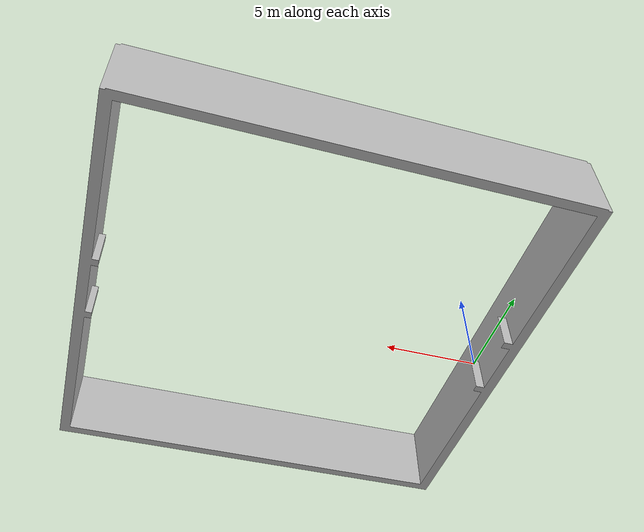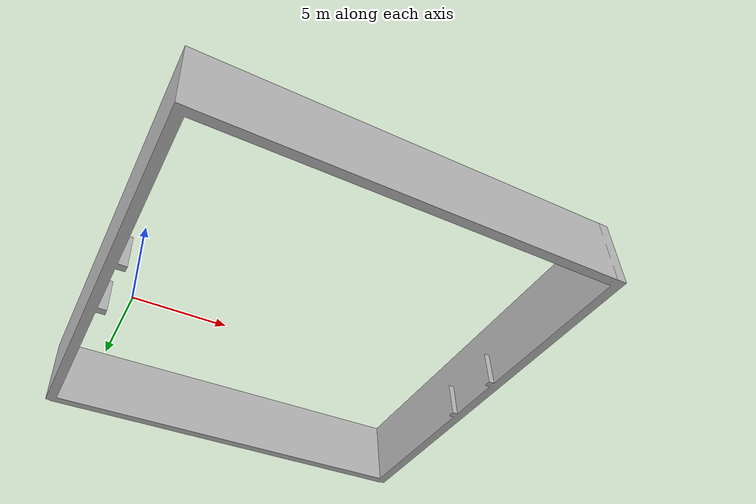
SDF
<?xml version="1.0" ?>
<sdf version="1.5">
  <model name="garage">
    <link name="link">
      <pose>0 0 0 0 0 0</pose>
      <collision name="collision">
        <geometry>
          <mesh>
            <uri>model://garage/meshes/model.dae</uri>
          </mesh>
        </geometry>
      </collision>
      <visual name="visual">
        <geometry>
          <mesh>
            <uri>model://garage/meshes/model.dae</uri>
          </mesh>
        </geometry>
      </visual>
    </link>
    <static>1</static>
  </model>
</sdf>
